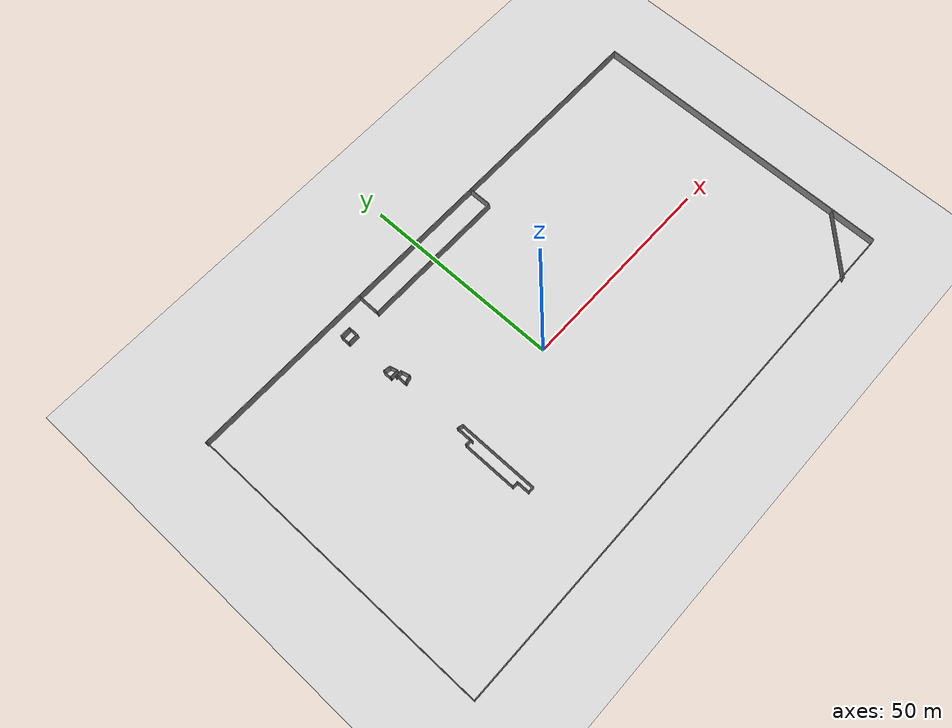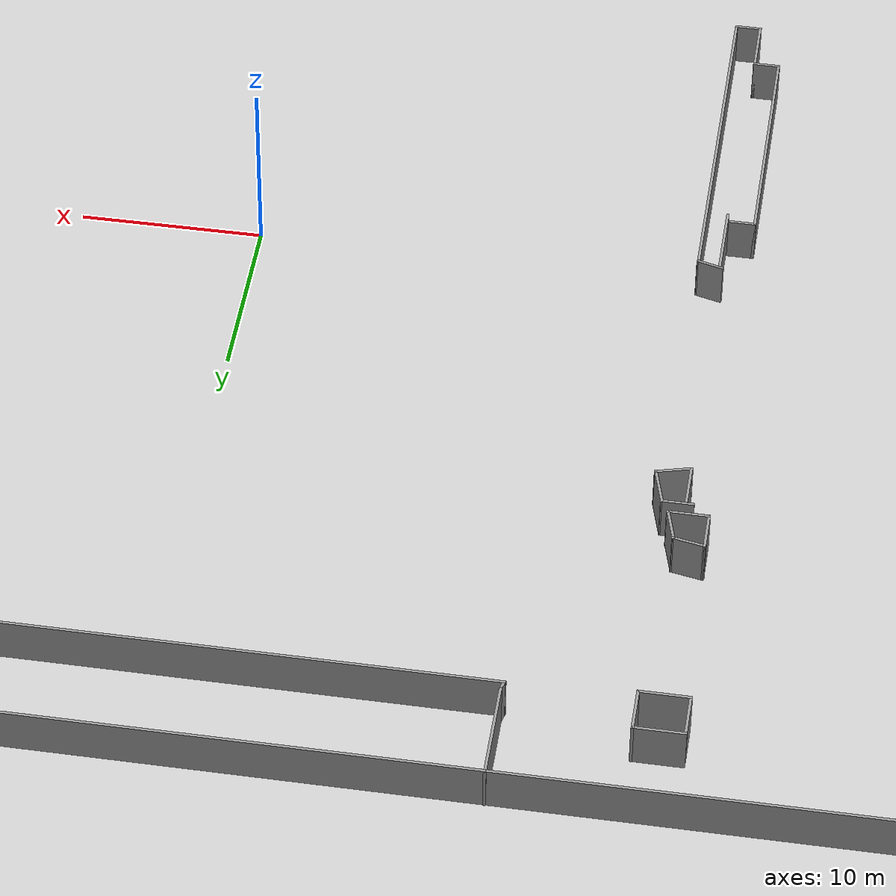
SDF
<sdf version="1.6">
 <world name="default">
  <light name="sun" type="directional">
   <pose>0 0 10 0 -0 0</pose>
   <diffuse>0.8 0.8 0.8 1</diffuse>
   <specular>0.2 0.2 0.2 1</specular>
   <attenuation>
    <range>1000</range>
    <constant>0.9</constant>
    <linear>0.01</linear>
    <quadratic>0.001</quadratic>
   </attenuation>
   <direction>-0.5 0.1 -0.9</direction>
  </light>
  <model name="ground_plane">
   <static>1</static>
   <link name="link">
    <collision name="collision">
     <geometry><plane><normal>0 0 1</normal><size>100 100</size></plane></geometry>
     <surface><friction><ode><mu>100</mu><mu2>50</mu2></ode></friction></surface>
    </collision>
    <visual name="visual">
     <cast_shadows>0</cast_shadows>
     <geometry><plane><normal>0 0 1</normal><size>100 100</size></plane></geometry>
     <material>
      <script><uri>file://media/materials/scripts/gazebo.material</uri><name>Gazebo/Grey</name></script>
     </material>
    </visual>
   </link>
  </model>
  <gravity>0 0 -9.8</gravity>
  <magnetic_field>6e-06 2.3e-05 -4.2e-05</magnetic_field>
  <atmosphere type="adiabatic"/>
  <physics type="ode">
   <max_step_size>0.001</max_step_size>
   <real_time_factor>1</real_time_factor>
   <real_time_update_rate>1000</real_time_update_rate>
  </physics>
  <scene><ambient>0.4 0.4 0.4 1</ambient><background>0.7 0.7 0.7 1</background><shadows>1</shadows></scene>
  <spherical_coordinates>
   <surface_model>EARTH_WGS84</surface_model>
   <latitude_deg>0</latitude_deg>
   <longitude_deg>0</longitude_deg>
   <elevation>0</elevation>
   <heading_deg>0</heading_deg>
  </spherical_coordinates>
  <model name="NVCC">
   <pose>2.94511 -0.324879 0 0 -0 0</pose>
   <link name="Wall_0">
    <collision name="Wall_0_Collision">
     <geometry><box><size>76.75 0.15 2.5</size></box></geometry>
     <pose>0 0 1.25 0 -0 0</pose>
    </collision>
    <visual name="Wall_0_Visual">
     <pose>0 0 1.25 0 -0 0</pose>
     <geometry><box><size>76.75 0.15 2.5</size></box></geometry>
     <material>
      <script><uri>file://media/materials/scripts/gazebo.material</uri><name>Gazebo/Grey</name></script>
      <ambient>1 1 1 1</ambient>
     </material>
     <meta><layer>0</layer></meta>
    </visual>
    <pose>-65.425 0.24733 0 0 -0 -1.5708</pose>
   </link>
   <link name="Wall_1">
    <collision name="Wall_1_Collision">
     <geometry><box><size>131.25 0.15 2.5</size></box></geometry>
     <pose>0 0 1.25 0 -0 0</pose>
    </collision>
    <visual name="Wall_1_Visual">
     <pose>0 0 1.25 0 -0 0</pose>
     <geometry><box><size>131.25 0.15 2.5</size></box></geometry>
     <material>
      <script><uri>file://media/materials/scripts/gazebo.material</uri><name>Gazebo/Grey</name></script>
      <ambient>1 1 1 1</ambient>
     </material>
     <meta><layer>0</layer></meta>
    </visual>
    <pose>0.124999 -38.0527 0 0 -0 0</pose>
   </link>
   <link name="Wall_10">
    <collision name="Wall_10_Collision">
     <geometry><box><size>0.628721 0.15 2.5</size></box></geometry>
     <pose>0 0 1.25 0 -0 0</pose>
    </collision>
    <visual name="Wall_10_Visual">
     <pose>0 0 1.25 0 -0 0</pose>
     <geometry><box><size>0.628721 0.15 2.5</size></box></geometry>
     <material>
      <script><uri>file://media/materials/scripts/gazebo.material</uri><name>Gazebo/Grey</name></script>
      <ambient>1 1 1 1</ambient>
     </material>
     <meta><layer>0</layer></meta>
    </visual>
    <pose>-20.9828 33.0035 0 0 -0 -1.82125</pose>
   </link>
   <link name="Wall_12">
    <collision name="Wall_12_Collision">
     <geometry><box><size>2.5 0.15 2.5</size></box></geometry>
     <pose>0 0 1.25 0 -0 0</pose>
    </collision>
    <visual name="Wall_12_Visual">
     <pose>0 0 1.25 0 -0 0</pose>
     <geometry><box><size>2.5 0.15 2.5</size></box></geometry>
     <material>
      <script><uri>file://media/materials/scripts/gazebo.material</uri><name>Gazebo/Grey</name></script>
      <ambient>1 1 1 1</ambient>
     </material>
     <meta><layer>0</layer></meta>
    </visual>
    <pose>-30.2071 33.52 0 0 -0 -1.5708</pose>
   </link>
   <link name="Wall_13">
    <collision name="Wall_13_Collision">
     <geometry><box><size>2.75 0.15 2.5</size></box></geometry>
     <pose>0 0 1.25 0 -0 0</pose>
    </collision>
    <visual name="Wall_13_Visual">
     <pose>0 0 1.25 0 -0 0</pose>
     <geometry><box><size>2.75 0.15 2.5</size></box></geometry>
     <material>
      <script><uri>file://media/materials/scripts/gazebo.material</uri><name>Gazebo/Grey</name></script>
      <ambient>1 1 1 1</ambient>
     </material>
     <meta><layer>0</layer></meta>
    </visual>
    <pose>-28.9071 32.345 0 0 -0 0</pose>
   </link>
   <link name="Wall_14">
    <collision name="Wall_14_Collision">
     <geometry><box><size>2.5 0.15 2.5</size></box></geometry>
     <pose>0 0 1.25 0 -0 0</pose>
    </collision>
    <visual name="Wall_14_Visual">
     <pose>0 0 1.25 0 -0 0</pose>
     <geometry><box><size>2.5 0.15 2.5</size></box></geometry>
     <material>
      <script><uri>file://media/materials/scripts/gazebo.material</uri><name>Gazebo/Grey</name></script>
      <ambient>1 1 1 1</ambient>
     </material>
     <meta><layer>0</layer></meta>
    </visual>
    <pose>-27.6071 33.52 0 0 -0 1.5708</pose>
   </link>
   <link name="Wall_15">
    <collision name="Wall_15_Collision">
     <geometry><box><size>2.75 0.15 2.5</size></box></geometry>
     <pose>0 0 1.25 0 -0 0</pose>
    </collision>
    <visual name="Wall_15_Visual">
     <pose>0 0 1.25 0 -0 0</pose>
     <geometry><box><size>2.75 0.15 2.5</size></box></geometry>
     <material>
      <script><uri>file://media/materials/scripts/gazebo.material</uri><name>Gazebo/Grey</name></script>
      <ambient>1 1 1 1</ambient>
     </material>
     <meta><layer>0</layer></meta>
    </visual>
    <pose>-28.9071 34.695 0 0 -0 3.14159</pose>
   </link>
   <link name="Wall_17">
    <collision name="Wall_17_Collision">
     <geometry><box><size>2.25 0.15 2.5</size></box></geometry>
     <pose>0 0 1.25 0 -0 0</pose>
    </collision>
    <visual name="Wall_17_Visual">
     <pose>0 0 1.25 0 -0 0</pose>
     <geometry><box><size>2.25 0.15 2.5</size></box></geometry>
     <material>
      <script><uri>file://media/materials/scripts/gazebo.material</uri><name>Gazebo/Grey</name></script>
      <ambient>1 1 1 1</ambient>
     </material>
     <meta><layer>0</layer></meta>
    </visual>
    <pose>-29.7585 21.0848 0 0 -0 -1.5708</pose>
   </link>
   <link name="Wall_18">
    <collision name="Wall_18_Collision">
     <geometry><box><size>2.25 0.15 2.5</size></box></geometry>
     <pose>0 0 1.25 0 -0 0</pose>
    </collision>
    <visual name="Wall_18_Visual">
     <pose>0 0 1.25 0 -0 0</pose>
     <geometry><box><size>2.25 0.15 2.5</size></box></geometry>
     <material>
      <script><uri>file://media/materials/scripts/gazebo.material</uri><name>Gazebo/Grey</name></script>
      <ambient>1 1 1 1</ambient>
     </material>
     <meta><layer>0</layer></meta>
    </visual>
    <pose>-28.7085 20.0348 0 0 -0 0</pose>
   </link>
   <link name="Wall_19">
    <collision name="Wall_19_Collision">
     <geometry><box><size>2 0.15 2.5</size></box></geometry>
     <pose>0 0 1.25 0 -0 0</pose>
    </collision>
    <visual name="Wall_19_Visual">
     <pose>0 0 1.25 0 -0 0</pose>
     <geometry><box><size>2 0.15 2.5</size></box></geometry>
     <material>
      <script><uri>file://media/materials/scripts/gazebo.material</uri><name>Gazebo/Grey</name></script>
      <ambient>1 1 1 1</ambient>
     </material>
     <meta><layer>0</layer></meta>
    </visual>
    <pose>-27.8979 20.9283 0 0 -0 1.8326</pose>
   </link>
   <link name="Wall_2">
    <collision name="Wall_2_Collision">
     <geometry><box><size>76.75 0.15 2.5</size></box></geometry>
     <pose>0 0 1.25 0 -0 0</pose>
    </collision>
    <visual name="Wall_2_Visual">
     <pose>0 0 1.25 0 -0 0</pose>
     <geometry><box><size>76.75 0.15 2.5</size></box></geometry>
     <material>
      <script><uri>file://media/materials/scripts/gazebo.material</uri><name>Gazebo/Grey</name></script>
      <ambient>1 1 1 1</ambient>
     </material>
     <meta><layer>0</layer></meta>
    </visual>
    <pose>65.675 0.24733 0 0 -0 1.5708</pose>
   </link>
   <link name="Wall_20">
    <collision name="Wall_20_Collision">
     <geometry><box><size>1.80113 0.15 2.5</size></box></geometry>
     <pose>0 0 1.25 0 -0 0</pose>
    </collision>
    <visual name="Wall_20_Visual">
     <pose>0 0 1.25 0 -0 0</pose>
     <geometry><box><size>1.80113 0.15 2.5</size></box></geometry>
     <material>
      <script><uri>file://media/materials/scripts/gazebo.material</uri><name>Gazebo/Grey</name></script>
      <ambient>1 1 1 1</ambient>
     </material>
     <meta><layer>0</layer></meta>
    </visual>
    <pose>-28.9479 21.9783 0 0 -0 2.95085</pose>
   </link>
   <link name="Wall_22">
    <collision name="Wall_22_Collision">
     <geometry><box><size>2.5 0.15 2.5</size></box></geometry>
     <pose>0 0 1.25 0 -0 0</pose>
    </collision>
    <visual name="Wall_22_Visual">
     <pose>0 0 1.25 0 -0 0</pose>
     <geometry><box><size>2.5 0.15 2.5</size></box></geometry>
     <material>
      <script><uri>file://media/materials/scripts/gazebo.material</uri><name>Gazebo/Grey</name></script>
      <ambient>1 1 1 1</ambient>
     </material>
     <meta><layer>0</layer></meta>
    </visual>
    <pose>-28.5025 17.9992 0 0 -0 -1.5708</pose>
   </link>
   <link name="Wall_23">
    <collision name="Wall_23_Collision">
     <geometry><box><size>2 0.15 2.5</size></box></geometry>
     <pose>0 0 1.25 0 -0 0</pose>
    </collision>
    <visual name="Wall_23_Visual">
     <pose>0 0 1.25 0 -0 0</pose>
     <geometry><box><size>2 0.15 2.5</size></box></geometry>
     <material>
      <script><uri>file://media/materials/scripts/gazebo.material</uri><name>Gazebo/Grey</name></script>
      <ambient>1 1 1 1</ambient>
     </material>
     <meta><layer>0</layer></meta>
    </visual>
    <pose>-27.609 17.0636 0 0 -0 0.261799</pose>
   </link>
   <link name="Wall_24">
    <collision name="Wall_24_Collision">
     <geometry><box><size>2.25 0.15 2.5</size></box></geometry>
     <pose>0 0 1.25 0 -0 0</pose>
    </collision>
    <visual name="Wall_24_Visual">
     <pose>0 0 1.25 0 -0 0</pose>
     <geometry><box><size>2.25 0.15 2.5</size></box></geometry>
     <material>
      <script><uri>file://media/materials/scripts/gazebo.material</uri><name>Gazebo/Grey</name></script>
      <ambient>1 1 1 1</ambient>
     </material>
     <meta><layer>0</layer></meta>
    </visual>
    <pose>-26.9873 18.3172 0 0 -0 1.8326</pose>
   </link>
   <link name="Wall_25">
    <collision name="Wall_25_Collision">
     <geometry><box><size>1.75 0.15 2.5</size></box></geometry>
     <pose>0 0 1.25 0 -0 0</pose>
    </collision>
    <visual name="Wall_25_Visual">
     <pose>0 0 1.25 0 -0 0</pose>
     <geometry><box><size>1.75 0.15 2.5</size></box></geometry>
     <material>
      <script><uri>file://media/materials/scripts/gazebo.material</uri><name>Gazebo/Grey</name></script>
      <ambient>1 1 1 1</ambient>
     </material>
     <meta><layer>0</layer></meta>
    </visual>
    <pose>-28.059 19.3315 0 0 -0 3.14159</pose>
   </link>
   <link name="Wall_27">
    <collision name="Wall_27_Collision">
     <geometry><box><size>4.25 0.15 2.5</size></box></geometry>
     <pose>0 0 1.25 0 -0 0</pose>
    </collision>
    <visual name="Wall_27_Visual">
     <pose>0 0 1.25 0 -0 0</pose>
     <geometry><box><size>4.25 0.15 2.5</size></box></geometry>
     <material>
      <script><uri>file://media/materials/scripts/gazebo.material</uri><name>Gazebo/Grey</name></script>
      <ambient>1 1 1 1</ambient>
     </material>
     <meta><layer>0</layer></meta>
    </visual>
    <pose>-28.3231 -0.639445 0 0 -0 -1.5708</pose>
   </link>
   <link name="Wall_29">
    <collision name="Wall_29_Collision">
     <geometry><box><size>1.5 0.15 2.5</size></box></geometry>
     <pose>0 0 1.25 0 -0 0</pose>
    </collision>
    <visual name="Wall_29_Visual">
     <pose>0 0 1.25 0 -0 0</pose>
     <geometry><box><size>1.5 0.15 2.5</size></box></geometry>
     <material>
      <script><uri>file://media/materials/scripts/gazebo.material</uri><name>Gazebo/Grey</name></script>
      <ambient>1 1 1 1</ambient>
     </material>
     <meta><layer>0</layer></meta>
    </visual>
    <pose>-29.1732 -2.17806 0 0 -0 0</pose>
   </link>
   <link name="Wall_3">
    <collision name="Wall_3_Collision">
     <geometry><box><size>131.5 0.15 2.5</size></box></geometry>
     <pose>0 0 1.25 0 -0 0</pose>
    </collision>
    <visual name="Wall_3_Visual">
     <pose>0 0 1.25 0 -0 0</pose>
     <geometry><box><size>131.5 0.15 2.5</size></box></geometry>
     <material>
      <script><uri>file://media/materials/scripts/gazebo.material</uri><name>Gazebo/Grey</name></script>
      <ambient>1 1 1 1</ambient>
     </material>
     <meta><layer>0</layer></meta>
    </visual>
    <pose>-1e-06 38.5473 0 0 -0 3.14159</pose>
   </link>
   <link name="Wall_31">
    <collision name="Wall_31_Collision">
     <geometry><box><size>13.5 0.15 2.5</size></box></geometry>
     <pose>0 0 1.25 0 -0 0</pose>
    </collision>
    <visual name="Wall_31_Visual">
     <pose>0 0 1.25 0 -0 0</pose>
     <geometry><box><size>13.5 0.15 2.5</size></box></geometry>
     <material>
      <script><uri>file://media/materials/scripts/gazebo.material</uri><name>Gazebo/Grey</name></script>
      <ambient>1 1 1 1</ambient>
     </material>
     <meta><layer>0</layer></meta>
    </visual>
    <pose>-29.8482 -8.85306 0 0 -0 -1.5708</pose>
   </link>
   <link name="Wall_32">
    <collision name="Wall_32_Collision">
     <geometry><box><size>1.5 0.15 2.5</size></box></geometry>
     <pose>0 0 1.25 0 -0 0</pose>
    </collision>
    <visual name="Wall_32_Visual">
     <pose>0 0 1.25 0 -0 0</pose>
     <geometry><box><size>1.5 0.15 2.5</size></box></geometry>
     <material>
      <script><uri>file://media/materials/scripts/gazebo.material</uri><name>Gazebo/Grey</name></script>
      <ambient>1 1 1 1</ambient>
     </material>
     <meta><layer>0</layer></meta>
    </visual>
    <pose>-29.1732 -15.5281 0 0 -0 0</pose>
   </link>
   <link name="Wall_33">
    <collision name="Wall_33_Collision">
     <geometry><box><size>3.25 0.15 2.5</size></box></geometry>
     <pose>0 0 1.25 0 -0 0</pose>
    </collision>
    <visual name="Wall_33_Visual">
     <pose>0 0 1.25 0 -0 0</pose>
     <geometry><box><size>3.25 0.15 2.5</size></box></geometry>
     <material>
      <script><uri>file://media/materials/scripts/gazebo.material</uri><name>Gazebo/Grey</name></script>
      <ambient>1 1 1 1</ambient>
     </material>
     <meta><layer>0</layer></meta>
    </visual>
    <pose>-28.4982 -17.0781 0 0 -0 -1.5708</pose>
   </link>
   <link name="Wall_34">
    <collision name="Wall_34_Collision">
     <geometry><box><size>1.5 0.15 2.5</size></box></geometry>
     <pose>0 0 1.25 0 -0 0</pose>
    </collision>
    <visual name="Wall_34_Visual">
     <pose>0 0 1.25 0 -0 0</pose>
     <geometry><box><size>1.5 0.15 2.5</size></box></geometry>
     <material>
      <script><uri>file://media/materials/scripts/gazebo.material</uri><name>Gazebo/Grey</name></script>
      <ambient>1 1 1 1</ambient>
     </material>
     <meta><layer>0</layer></meta>
    </visual>
    <pose>-27.8232 -18.6281 0 0 -0 0</pose>
   </link>
   <link name="Wall_35">
    <collision name="Wall_35_Collision">
     <geometry><box><size>20 0.15 2.5</size></box></geometry>
     <pose>0 0 1.25 0 -0 0</pose>
    </collision>
    <visual name="Wall_35_Visual">
     <pose>0 0 1.25 0 -0 0</pose>
     <geometry><box><size>20 0.15 2.5</size></box></geometry>
     <material>
      <script><uri>file://media/materials/scripts/gazebo.material</uri><name>Gazebo/Grey</name></script>
      <ambient>1 1 1 1</ambient>
     </material>
     <meta><layer>0</layer></meta>
    </visual>
    <pose>-27.1482 -8.70306 0 0 -0 1.5708</pose>
   </link>
   <link name="Wall_36">
    <collision name="Wall_36_Collision">
     <geometry><box><size>1.5 0.15 2.5</size></box></geometry>
     <pose>0 0 1.25 0 -0 0</pose>
    </collision>
    <visual name="Wall_36_Visual">
     <pose>0 0 1.25 0 -0 0</pose>
     <geometry><box><size>1.5 0.15 2.5</size></box></geometry>
     <material>
      <script><uri>file://media/materials/scripts/gazebo.material</uri><name>Gazebo/Grey</name></script>
      <ambient>1 1 1 1</ambient>
     </material>
     <meta><layer>0</layer></meta>
    </visual>
    <pose>-27.8002 1.39664 0 0 -0 2.87979</pose>
   </link>
   <link name="Wall_38">
    <collision name="Wall_38_Collision">
     <geometry><box><size>17 0.15 2.5</size></box></geometry>
     <pose>0 0 1.25 0 -0 0</pose>
    </collision>
    <visual name="Wall_38_Visual">
     <pose>0 0 1.25 0 -0 0</pose>
     <geometry><box><size>17 0.15 2.5</size></box></geometry>
     <material>
      <script><uri>file://media/materials/scripts/gazebo.material</uri><name>Gazebo/Grey</name></script>
      <ambient>1 1 1 1</ambient>
     </material>
     <meta><layer>0</layer></meta>
    </visual>
    <pose>59.54 -32.6332 0 0 -0 -2.35619</pose>
   </link>
   <link name="Wall_5">
    <collision name="Wall_5_Collision">
     <geometry><box><size>5.5 0.15 2.5</size></box></geometry>
     <pose>0 0 1.25 0 -0 0</pose>
    </collision>
    <visual name="Wall_5_Visual">
     <pose>0 0 1.25 0 -0 0</pose>
     <geometry><box><size>5.5 0.15 2.5</size></box></geometry>
     <material>
      <script><uri>file://media/materials/scripts/gazebo.material</uri><name>Gazebo/Grey</name></script>
      <ambient>1 1 1 1</ambient>
     </material>
     <meta><layer>0</layer></meta>
    </visual>
    <pose>-20.9235 35.9104 0 0 -0 -1.5708</pose>
   </link>
   <link name="Wall_7">
    <collision name="Wall_7_Collision">
     <geometry><box><size>36 0.15 2.5</size></box></geometry>
     <pose>0 0 1.25 0 -0 0</pose>
    </collision>
    <visual name="Wall_7_Visual">
     <pose>0 0 1.25 0 -0 0</pose>
     <geometry><box><size>36 0.15 2.5</size></box></geometry>
     <material>
      <script><uri>file://media/materials/scripts/gazebo.material</uri><name>Gazebo/Grey</name></script>
      <ambient>1 1 1 1</ambient>
     </material>
     <meta><layer>0</layer></meta>
    </visual>
    <pose>-3.11717 32.7716 0 0 -0 0</pose>
   </link>
   <link name="Wall_8">
    <collision name="Wall_8_Collision">
     <geometry><box><size>6 0.15 2.5</size></box></geometry>
     <pose>0 0 1.25 0 -0 0</pose>
    </collision>
    <visual name="Wall_8_Visual">
     <pose>0 0 1.25 0 -0 0</pose>
     <geometry><box><size>6 0.15 2.5</size></box></geometry>
     <material>
      <script><uri>file://media/materials/scripts/gazebo.material</uri><name>Gazebo/Grey</name></script>
      <ambient>1 1 1 1</ambient>
     </material>
     <meta><layer>0</layer></meta>
    </visual>
    <pose>14.8078 35.6966 0 0 -0 1.5708</pose>
   </link>
   <static>1</static>
  </model>
 </world>
</sdf>
